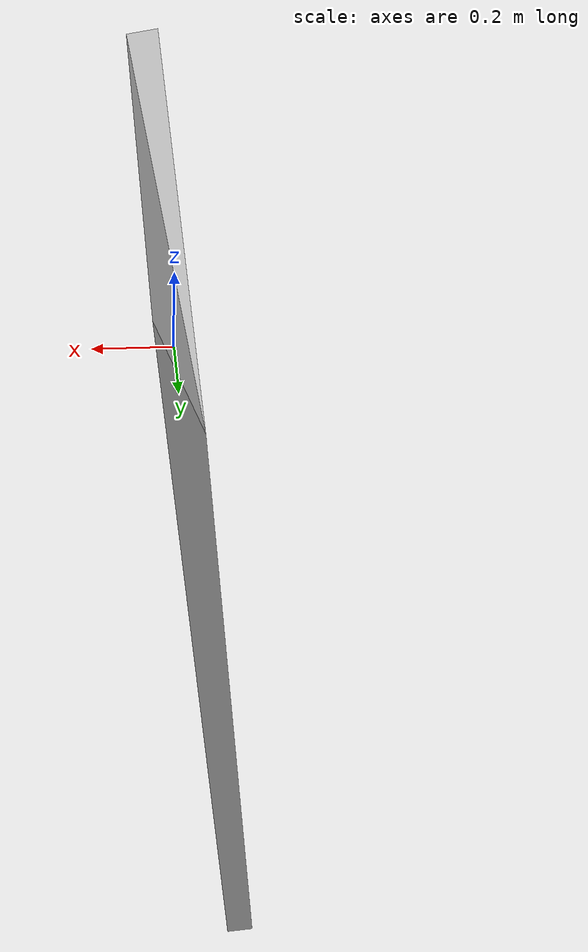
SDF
<?xml version="1.0" ?>
<sdf version="1.6">
  <model name="tree">
    <static>true</static>
    <link name="link">
      <collision name="collision">
        <geometry>
          <mesh>
            <pose>0 0 0 0 0 0</pose>

            <scale>0.28054126509522415 0.28054126509522415 0.28054126509522415</scale>
            <uri>model://tree/meshes/tree.obj</uri>
          </mesh>
        </geometry>
      </collision>
      <visual name="visual">
        <geometry>
          <mesh>
            <pose>0 0 0 0 0 0</pose>
            <scale>0.28054126509522415 0.28054126509522415 0.28054126509522415</scale>

            <uri>model://tree/meshes/tree.obj</uri>
          </mesh>
        </geometry>
      </visual>
    </link>
  </model>
</sdf>
